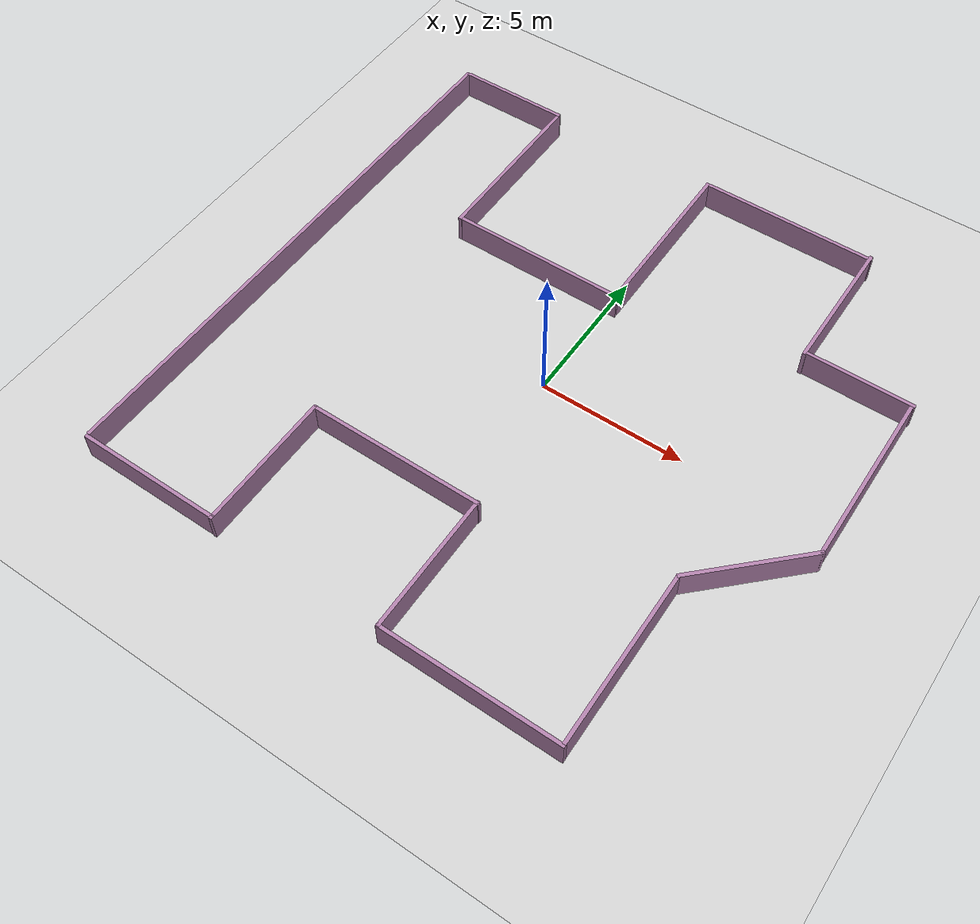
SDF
<sdf version="1.7">
 <world name="default">
  <light name="sun" type="directional">
   <pose>0 0 10 0 -0 0</pose>
   <diffuse>0.8 0.8 0.8 1</diffuse>
   <specular>0.2 0.2 0.2 1</specular>
   <attenuation>
    <range>1000</range>
    <constant>0.9</constant>
    <linear>0.01</linear>
    <quadratic>0.001</quadratic>
   </attenuation>
   <direction>-0.5 0.1 -0.9</direction>
   <spot><inner_angle>0</inner_angle><outer_angle>0</outer_angle><falloff>0</falloff></spot>
  </light>
  <model name="ground_plane">
   <static>1</static>
   <link name="link">
    <collision name="collision">
     <geometry><plane><normal>0 0 1</normal><size>100 100</size></plane></geometry>
     <surface>
      <contact><collide_bitmask>65535</collide_bitmask></contact>
      <friction><ode><mu>100</mu><mu2>50</mu2></ode></friction>
     </surface>
    </collision>
    <visual name="visual">
     <cast_shadows>0</cast_shadows>
     <geometry><plane><normal>0 0 1</normal><size>100 100</size></plane></geometry>
     <material>
      <script><uri>file://media/materials/scripts/gazebo.material</uri><name>Gazebo/Grey</name></script>
     </material>
    </visual>
   </link>
  </model>
  <gravity>0 0 -9.8</gravity>
  <magnetic_field>6e-06 2.3e-05 -4.2e-05</magnetic_field>
  <atmosphere type="adiabatic"/>
  <physics type="ode">
   <max_step_size>0.001</max_step_size>
   <real_time_factor>1</real_time_factor>
   <real_time_update_rate>1000</real_time_update_rate>
  </physics>
  <scene><ambient>0.4 0.4 0.4 1</ambient><background>0.7 0.7 0.7 1</background><shadows>1</shadows></scene>
  <spherical_coordinates>
   <surface_model>EARTH_WGS84</surface_model>
   <latitude_deg>0</latitude_deg>
   <longitude_deg>0</longitude_deg>
   <elevation>0</elevation>
   <heading_deg>0</heading_deg>
  </spherical_coordinates>
  <model name="walls2">
   <link name="link_0">
    <inertial>
     <mass>50</mass>
     <inertia><ixx>4.23073</ixx><ixy>0</ixy><ixz>0</ixz><iyy>159.789</iyy><iyz>0</iyz><izz>155.687</izz></inertia>
    </inertial>
    <pose>2.81569 9.66174 -0 0 -0 0</pose>
    <visual name="visual">
     <geometry><box><size>6.11142 0.123995 1</size></box></geometry>
     <material>
      <lighting>1</lighting>
      <script><uri>file://media/materials/scripts/gazebo.material</uri><name>Gazebo/Grey</name></script>
      <shader type="pixel"><normal_map>__default__</normal_map></shader>
      <ambient>0.678 0.498 0.659 1</ambient>
      <diffuse>0.7 0.7 0.7 1</diffuse>
      <specular>0.01 0.01 0.01 1</specular>
      <emissive>0 0 0 1</emissive>
     </material>
    </visual>
    <collision name="collision">
     <geometry><box><size>6.11142 0.123995 1</size></box></geometry>
     <surface>
      <friction>
       <ode><mu>1</mu><mu2>1</mu2><fdir1>0 0 0</fdir1><slip1>0</slip1><slip2>0</slip2></ode>
       <torsional>
        <coefficient>1</coefficient>
        <patch_radius>0</patch_radius>
        <surface_radius>0</surface_radius>
        <use_patch_radius>1</use_patch_radius>
        <ode><slip>0</slip></ode>
       </torsional>
      </friction>
      <bounce><restitution_coefficient>0</restitution_coefficient><threshold>1e+06</threshold></bounce>
      <contact>
       <collide_without_contact>0</collide_without_contact>
       <collide_without_contact_bitmask>1</collide_without_contact_bitmask>
       <collide_bitmask>1</collide_bitmask>
       <ode>
        <soft_cfm>0</soft_cfm>
        <soft_erp>0.2</soft_erp>
        <kp>1e+13</kp>
        <kd>1</kd>
        <max_vel>0.01</max_vel>
        <min_depth>0</min_depth>
       </ode>
       <bullet>
        <split_impulse>1</split_impulse>
        <split_impulse_penetration_threshold>-0.01</split_impulse_penetration_threshold>
        <soft_cfm>0</soft_cfm>
        <soft_erp>0.2</soft_erp>
        <kp>1e+13</kp>
        <kd>1</kd>
       </bullet>
      </contact>
     </surface>
    </collision>
   </link>
   <link name="link_0_clone">
    <inertial>
     <mass>50</mass>
     <inertia><ixx>4.23073</ixx><ixy>0</ixy><ixz>0</ixz><iyy>159.789</iyy><iyz>0</iyz><izz>155.687</izz></inertia>
    </inertial>
    <pose>-3.2525 3.58824 -0 0 -0 0</pose>
    <visual name="visual">
     <geometry><box><size>6.11142 0.123995 1</size></box></geometry>
     <material>
      <lighting>1</lighting>
      <script><uri>file://media/materials/scripts/gazebo.material</uri><name>Gazebo/Grey</name></script>
      <shader type="pixel"><normal_map>__default__</normal_map></shader>
      <ambient>0.678 0.498 0.659 1</ambient>
      <diffuse>0.7 0.7 0.7 1</diffuse>
      <specular>0.01 0.01 0.01 1</specular>
      <emissive>0 0 0 1</emissive>
     </material>
    </visual>
    <collision name="collision">
     <geometry><box><size>6.11142 0.123995 1</size></box></geometry>
     <surface>
      <friction>
       <ode><mu>1</mu><mu2>1</mu2><fdir1>0 0 0</fdir1><slip1>0</slip1><slip2>0</slip2></ode>
       <torsional>
        <coefficient>1</coefficient>
        <patch_radius>0</patch_radius>
        <surface_radius>0</surface_radius>
        <use_patch_radius>1</use_patch_radius>
        <ode><slip>0</slip></ode>
       </torsional>
      </friction>
      <bounce><restitution_coefficient>0</restitution_coefficient><threshold>1e+06</threshold></bounce>
      <contact>
       <collide_without_contact>0</collide_without_contact>
       <collide_without_contact_bitmask>1</collide_without_contact_bitmask>
       <collide_bitmask>1</collide_bitmask>
       <ode>
        <soft_cfm>0</soft_cfm>
        <soft_erp>0.2</soft_erp>
        <kp>1e+13</kp>
        <kd>1</kd>
        <max_vel>0.01</max_vel>
        <min_depth>0</min_depth>
       </ode>
       <bullet>
        <split_impulse>1</split_impulse>
        <split_impulse_penetration_threshold>-0.01</split_impulse_penetration_threshold>
        <soft_cfm>0</soft_cfm>
        <soft_erp>0.2</soft_erp>
        <kp>1e+13</kp>
        <kd>1</kd>
       </bullet>
      </contact>
     </surface>
    </collision>
   </link>
   <link name="link_0_clone_0">
    <inertial>
     <mass>50</mass>
     <inertia><ixx>4.23073</ixx><ixy>0</ixy><ixz>0</ixz><iyy>159.789</iyy><iyz>0</iyz><izz>155.687</izz></inertia>
    </inertial>
    <pose>-0.275729 6.66057 0 0 -0 1.57761</pose>
    <visual name="visual">
     <geometry><box><size>6.11142 0.123995 1</size></box></geometry>
     <material>
      <lighting>1</lighting>
      <script><uri>file://media/materials/scripts/gazebo.material</uri><name>Gazebo/Grey</name></script>
      <shader type="pixel"><normal_map>__default__</normal_map></shader>
      <ambient>0.678 0.498 0.659 1</ambient>
      <diffuse>0.7 0.7 0.7 1</diffuse>
      <specular>0.01 0.01 0.01 1</specular>
      <emissive>0 0 0 1</emissive>
     </material>
    </visual>
    <collision name="collision">
     <geometry><box><size>6.11142 0.123995 1</size></box></geometry>
     <surface>
      <friction>
       <ode><mu>1</mu><mu2>1</mu2><fdir1>0 0 0</fdir1><slip1>0</slip1><slip2>0</slip2></ode>
       <torsional>
        <coefficient>1</coefficient>
        <patch_radius>0</patch_radius>
        <surface_radius>0</surface_radius>
        <use_patch_radius>1</use_patch_radius>
        <ode><slip>0</slip></ode>
       </torsional>
      </friction>
      <bounce><restitution_coefficient>0</restitution_coefficient><threshold>1e+06</threshold></bounce>
      <contact>
       <collide_without_contact>0</collide_without_contact>
       <collide_without_contact_bitmask>1</collide_without_contact_bitmask>
       <collide_bitmask>1</collide_bitmask>
       <ode>
        <soft_cfm>0</soft_cfm>
        <soft_erp>0.2</soft_erp>
        <kp>1e+13</kp>
        <kd>1</kd>
        <max_vel>0.01</max_vel>
        <min_depth>0</min_depth>
       </ode>
       <bullet>
        <split_impulse>1</split_impulse>
        <split_impulse_penetration_threshold>-0.01</split_impulse_penetration_threshold>
        <soft_cfm>0</soft_cfm>
        <soft_erp>0.2</soft_erp>
        <kp>1e+13</kp>
        <kd>1</kd>
       </bullet>
      </contact>
     </surface>
    </collision>
   </link>
   <link name="link_0_clone_0_clone">
    <inertial>
     <mass>50</mass>
     <inertia><ixx>4.23073</ixx><ixy>0</ixy><ixz>0</ixz><iyy>159.789</iyy><iyz>0</iyz><izz>155.687</izz></inertia>
    </inertial>
    <pose>-6.39642 6.57189 -0 0 -0 1.57761</pose>
    <visual name="visual">
     <geometry><box><size>6.11142 0.123995 1</size></box></geometry>
     <material>
      <lighting>1</lighting>
      <script><uri>file://media/materials/scripts/gazebo.material</uri><name>Gazebo/Grey</name></script>
      <shader type="pixel"><normal_map>__default__</normal_map></shader>
      <ambient>0.678 0.498 0.659 1</ambient>
      <diffuse>0.7 0.7 0.7 1</diffuse>
      <specular>0.01 0.01 0.01 1</specular>
      <emissive>0 0 0 1</emissive>
     </material>
    </visual>
    <collision name="collision">
     <geometry><box><size>6.11142 0.123995 1</size></box></geometry>
     <surface>
      <friction>
       <ode><mu>1</mu><mu2>1</mu2><fdir1>0 0 0</fdir1><slip1>0</slip1><slip2>0</slip2></ode>
       <torsional>
        <coefficient>1</coefficient>
        <patch_radius>0</patch_radius>
        <surface_radius>0</surface_radius>
        <use_patch_radius>1</use_patch_radius>
        <ode><slip>0</slip></ode>
       </torsional>
      </friction>
      <bounce><restitution_coefficient>0</restitution_coefficient><threshold>1e+06</threshold></bounce>
      <contact>
       <collide_without_contact>0</collide_without_contact>
       <collide_without_contact_bitmask>1</collide_without_contact_bitmask>
       <collide_bitmask>1</collide_bitmask>
       <ode>
        <soft_cfm>0</soft_cfm>
        <soft_erp>0.2</soft_erp>
        <kp>1e+13</kp>
        <kd>1</kd>
        <max_vel>0.01</max_vel>
        <min_depth>0</min_depth>
       </ode>
       <bullet>
        <split_impulse>1</split_impulse>
        <split_impulse_penetration_threshold>-0.01</split_impulse_penetration_threshold>
        <soft_cfm>0</soft_cfm>
        <soft_erp>0.2</soft_erp>
        <kp>1e+13</kp>
        <kd>1</kd>
       </bullet>
      </contact>
     </surface>
    </collision>
   </link>
   <link name="link_0_clone_0_clone_0">
    <inertial>
     <mass>50</mass>
     <inertia><ixx>4.23073</ixx><ixy>0</ixy><ixz>0</ixz><iyy>104.411</iyy><iyz>0</iyz><izz>100.308</izz></inertia>
    </inertial>
    <pose>5.79942 7.34796 0 0 -0 1.57761</pose>
    <visual name="visual">
     <geometry><box><size>4.90496 0.123995 1</size></box></geometry>
     <material>
      <lighting>1</lighting>
      <script><uri>file://media/materials/scripts/gazebo.material</uri><name>Gazebo/Grey</name></script>
      <shader type="pixel"><normal_map>__default__</normal_map></shader>
      <ambient>0.678 0.498 0.659 1</ambient>
      <diffuse>0.7 0.7 0.7 1</diffuse>
      <specular>0.01 0.01 0.01 1</specular>
      <emissive>0 0 0 1</emissive>
     </material>
    </visual>
    <collision name="collision">
     <geometry><box><size>4.90496 0.123995 1</size></box></geometry>
     <surface>
      <friction>
       <ode><mu>1</mu><mu2>1</mu2><fdir1>0 0 0</fdir1><slip1>0</slip1><slip2>0</slip2></ode>
       <torsional>
        <coefficient>1</coefficient>
        <patch_radius>0</patch_radius>
        <surface_radius>0</surface_radius>
        <use_patch_radius>1</use_patch_radius>
        <ode><slip>0</slip></ode>
       </torsional>
      </friction>
      <bounce><restitution_coefficient>0</restitution_coefficient><threshold>1e+06</threshold></bounce>
      <contact>
       <collide_without_contact>0</collide_without_contact>
       <collide_without_contact_bitmask>1</collide_without_contact_bitmask>
       <collide_bitmask>1</collide_bitmask>
       <ode>
        <soft_cfm>0</soft_cfm>
        <soft_erp>0.2</soft_erp>
        <kp>1e+13</kp>
        <kd>1</kd>
        <max_vel>0.01</max_vel>
        <min_depth>0</min_depth>
       </ode>
       <bullet>
        <split_impulse>1</split_impulse>
        <split_impulse_penetration_threshold>-0.01</split_impulse_penetration_threshold>
        <soft_cfm>0</soft_cfm>
        <soft_erp>0.2</soft_erp>
        <kp>1e+13</kp>
        <kd>1</kd>
       </bullet>
      </contact>
     </surface>
    </collision>
   </link>
   <link name="link_0_clone_0_clone_clone">
    <inertial>
     <mass>50</mass>
     <inertia><ixx>4.23073</ixx><ixy>0</ixy><ixz>0</ixz><iyy>1607.24</iyy><iyz>0</iyz><izz>1603.13</izz></inertia>
    </inertial>
    <pose>-10.39 -0.11205 -0 0 -0 1.57046</pose>
    <visual name="visual">
     <geometry><box><size>19.6147 0.123995 1</size></box></geometry>
     <material>
      <lighting>1</lighting>
      <script><uri>file://media/materials/scripts/gazebo.material</uri><name>Gazebo/Grey</name></script>
      <shader type="pixel"><normal_map>__default__</normal_map></shader>
      <ambient>0.678 0.498 0.659 1</ambient>
      <diffuse>0.7 0.7 0.7 1</diffuse>
      <specular>0.01 0.01 0.01 1</specular>
      <emissive>0 0 0 1</emissive>
     </material>
    </visual>
    <collision name="collision">
     <geometry><box><size>19.6147 0.123995 1</size></box></geometry>
     <surface>
      <friction>
       <ode><mu>1</mu><mu2>1</mu2><fdir1>0 0 0</fdir1><slip1>0</slip1><slip2>0</slip2></ode>
       <torsional>
        <coefficient>1</coefficient>
        <patch_radius>0</patch_radius>
        <surface_radius>0</surface_radius>
        <use_patch_radius>1</use_patch_radius>
        <ode><slip>0</slip></ode>
       </torsional>
      </friction>
      <bounce><restitution_coefficient>0</restitution_coefficient><threshold>1e+06</threshold></bounce>
      <contact>
       <collide_without_contact>0</collide_without_contact>
       <collide_without_contact_bitmask>1</collide_without_contact_bitmask>
       <collide_bitmask>1</collide_bitmask>
       <ode>
        <soft_cfm>0</soft_cfm>
        <soft_erp>0.2</soft_erp>
        <kp>1e+13</kp>
        <kd>1</kd>
        <max_vel>0.01</max_vel>
        <min_depth>0</min_depth>
       </ode>
       <bullet>
        <split_impulse>1</split_impulse>
        <split_impulse_penetration_threshold>-0.01</split_impulse_penetration_threshold>
        <soft_cfm>0</soft_cfm>
        <soft_erp>0.2</soft_erp>
        <kp>1e+13</kp>
        <kd>1</kd>
       </bullet>
      </contact>
     </surface>
    </collision>
   </link>
   <link name="link_0_clone_0_clone_clone_1">
    <inertial>
     <mass>50</mass>
     <inertia><ixx>4.23073</ixx><ixy>0</ixy><ixz>0</ixz><iyy>159.789</iyy><iyz>0</iyz><izz>155.687</izz></inertia>
    </inertial>
    <pose>9.45052 1.86327 0 0 -0 1.57761</pose>
    <visual name="visual">
     <geometry><box><size>6.11142 0.123995 1</size></box></geometry>
     <material>
      <lighting>1</lighting>
      <script><uri>file://media/materials/scripts/gazebo.material</uri><name>Gazebo/Grey</name></script>
      <shader type="pixel"><normal_map>__default__</normal_map></shader>
      <ambient>0.678 0.498 0.659 1</ambient>
      <diffuse>0.7 0.7 0.7 1</diffuse>
      <specular>0.01 0.01 0.01 1</specular>
      <emissive>0 0 0 1</emissive>
     </material>
    </visual>
    <collision name="collision">
     <geometry><box><size>6.11142 0.123995 1</size></box></geometry>
     <surface>
      <friction>
       <ode><mu>1</mu><mu2>1</mu2><fdir1>0 0 0</fdir1><slip1>0</slip1><slip2>0</slip2></ode>
       <torsional>
        <coefficient>1</coefficient>
        <patch_radius>0</patch_radius>
        <surface_radius>0</surface_radius>
        <use_patch_radius>1</use_patch_radius>
        <ode><slip>0</slip></ode>
       </torsional>
      </friction>
      <bounce><restitution_coefficient>0</restitution_coefficient><threshold>1e+06</threshold></bounce>
      <contact>
       <collide_without_contact>0</collide_without_contact>
       <collide_without_contact_bitmask>1</collide_without_contact_bitmask>
       <collide_bitmask>1</collide_bitmask>
       <ode>
        <soft_cfm>0</soft_cfm>
        <soft_erp>0.2</soft_erp>
        <kp>1e+13</kp>
        <kd>1</kd>
        <max_vel>0.01</max_vel>
        <min_depth>0</min_depth>
       </ode>
       <bullet>
        <split_impulse>1</split_impulse>
        <split_impulse_penetration_threshold>-0.01</split_impulse_penetration_threshold>
        <soft_cfm>0</soft_cfm>
        <soft_erp>0.2</soft_erp>
        <kp>1e+13</kp>
        <kd>1</kd>
       </bullet>
      </contact>
     </surface>
    </collision>
   </link>
   <link name="link_0_clone_0_clone_clone_1_clone">
    <inertial>
     <mass>50</mass>
     <inertia><ixx>4.23073</ixx><ixy>0</ixy><ixz>0</ixz><iyy>150.274</iyy><iyz>0</iyz><izz>146.172</izz></inertia>
    </inertial>
    <pose>6.54357 -7.01597 0 0 -0 1.57761</pose>
    <visual name="visual">
     <geometry><box><size>5.92164 0.123995 1</size></box></geometry>
     <material>
      <lighting>1</lighting>
      <script><uri>file://media/materials/scripts/gazebo.material</uri><name>Gazebo/Grey</name></script>
      <shader type="pixel"><normal_map>__default__</normal_map></shader>
      <ambient>0.678 0.498 0.659 1</ambient>
      <diffuse>0.7 0.7 0.7 1</diffuse>
      <specular>0.01 0.01 0.01 1</specular>
      <emissive>0 0 0 1</emissive>
     </material>
    </visual>
    <collision name="collision">
     <geometry><box><size>5.92164 0.123995 1</size></box></geometry>
     <surface>
      <friction>
       <ode><mu>1</mu><mu2>1</mu2><fdir1>0 0 0</fdir1><slip1>0</slip1><slip2>0</slip2></ode>
       <torsional>
        <coefficient>1</coefficient>
        <patch_radius>0</patch_radius>
        <surface_radius>0</surface_radius>
        <use_patch_radius>1</use_patch_radius>
        <ode><slip>0</slip></ode>
       </torsional>
      </friction>
      <bounce><restitution_coefficient>0</restitution_coefficient><threshold>1e+06</threshold></bounce>
      <contact>
       <collide_without_contact>0</collide_without_contact>
       <collide_without_contact_bitmask>1</collide_without_contact_bitmask>
       <collide_bitmask>1</collide_bitmask>
       <ode>
        <soft_cfm>0</soft_cfm>
        <soft_erp>0.2</soft_erp>
        <kp>1e+13</kp>
        <kd>1</kd>
        <max_vel>0.01</max_vel>
        <min_depth>0</min_depth>
       </ode>
       <bullet>
        <split_impulse>1</split_impulse>
        <split_impulse_penetration_threshold>-0.01</split_impulse_penetration_threshold>
        <soft_cfm>0</soft_cfm>
        <soft_erp>0.2</soft_erp>
        <kp>1e+13</kp>
        <kd>1</kd>
       </bullet>
      </contact>
     </surface>
    </collision>
   </link>
   <link name="link_0_clone_0_clone_clone_1_clone_0">
    <inertial>
     <mass>50</mass>
     <inertia><ixx>4.23073</ixx><ixy>0</ixy><ixz>0</ixz><iyy>80.3782</iyy><iyz>0</iyz><izz>76.2756</izz></inertia>
    </inertial>
    <pose>8.00906 -2.60649 -0 0 -0 0.779476</pose>
    <visual name="visual">
     <geometry><box><size>4.27677 0.123995 1</size></box></geometry>
     <material>
      <lighting>1</lighting>
      <script><uri>file://media/materials/scripts/gazebo.material</uri><name>Gazebo/Grey</name></script>
      <shader type="pixel"><normal_map>__default__</normal_map></shader>
      <ambient>0.678 0.498 0.659 1</ambient>
      <diffuse>0.7 0.7 0.7 1</diffuse>
      <specular>0.01 0.01 0.01 1</specular>
      <emissive>0 0 0 1</emissive>
     </material>
    </visual>
    <collision name="collision">
     <geometry><box><size>4.27677 0.123995 1</size></box></geometry>
     <surface>
      <friction>
       <ode><mu>1</mu><mu2>1</mu2><fdir1>0 0 0</fdir1><slip1>0</slip1><slip2>0</slip2></ode>
       <torsional>
        <coefficient>1</coefficient>
        <patch_radius>0</patch_radius>
        <surface_radius>0</surface_radius>
        <use_patch_radius>1</use_patch_radius>
        <ode><slip>0</slip></ode>
       </torsional>
      </friction>
      <bounce><restitution_coefficient>0</restitution_coefficient><threshold>1e+06</threshold></bounce>
      <contact>
       <collide_without_contact>0</collide_without_contact>
       <collide_without_contact_bitmask>1</collide_without_contact_bitmask>
       <collide_bitmask>1</collide_bitmask>
       <ode>
        <soft_cfm>0</soft_cfm>
        <soft_erp>0.2</soft_erp>
        <kp>1e+13</kp>
        <kd>1</kd>
        <max_vel>0.01</max_vel>
        <min_depth>0</min_depth>
       </ode>
       <bullet>
        <split_impulse>1</split_impulse>
        <split_impulse_penetration_threshold>-0.01</split_impulse_penetration_threshold>
        <soft_cfm>0</soft_cfm>
        <soft_erp>0.2</soft_erp>
        <kp>1e+13</kp>
        <kd>1</kd>
       </bullet>
      </contact>
     </surface>
    </collision>
   </link>
   <link name="link_0_clone_0_clone_clone_1_clone_1">
    <inertial>
     <mass>50</mass>
     <inertia><ixx>4.23073</ixx><ixy>0</ixy><ixz>0</ixz><iyy>100.443</iyy><iyz>0</iyz><izz>96.3407</izz></inertia>
    </inertial>
    <pose>0.563417 -7.63733 -0 0 -0 1.57761</pose>
    <visual name="visual">
     <geometry><box><size>4.80691 0.123995 1</size></box></geometry>
     <material>
      <lighting>1</lighting>
      <script><uri>file://media/materials/scripts/gazebo.material</uri><name>Gazebo/Grey</name></script>
      <shader type="pixel"><normal_map>__default__</normal_map></shader>
      <ambient>0.678 0.498 0.659 1</ambient>
      <diffuse>0.7 0.7 0.7 1</diffuse>
      <specular>0.01 0.01 0.01 1</specular>
      <emissive>0 0 0 1</emissive>
     </material>
    </visual>
    <collision name="collision">
     <geometry><box><size>4.80691 0.123995 1</size></box></geometry>
     <surface>
      <friction>
       <ode><mu>1</mu><mu2>1</mu2><fdir1>0 0 0</fdir1><slip1>0</slip1><slip2>0</slip2></ode>
       <torsional>
        <coefficient>1</coefficient>
        <patch_radius>0</patch_radius>
        <surface_radius>0</surface_radius>
        <use_patch_radius>1</use_patch_radius>
        <ode><slip>0</slip></ode>
       </torsional>
      </friction>
      <bounce><restitution_coefficient>0</restitution_coefficient><threshold>1e+06</threshold></bounce>
      <contact>
       <collide_without_contact>0</collide_without_contact>
       <collide_without_contact_bitmask>1</collide_without_contact_bitmask>
       <collide_bitmask>1</collide_bitmask>
       <ode>
        <soft_cfm>0</soft_cfm>
        <soft_erp>0.2</soft_erp>
        <kp>1e+13</kp>
        <kd>1</kd>
        <max_vel>0.01</max_vel>
        <min_depth>0</min_depth>
       </ode>
       <bullet>
        <split_impulse>1</split_impulse>
        <split_impulse_penetration_threshold>-0.01</split_impulse_penetration_threshold>
        <soft_cfm>0</soft_cfm>
        <soft_erp>0.2</soft_erp>
        <kp>1e+13</kp>
        <kd>1</kd>
       </bullet>
      </contact>
     </surface>
    </collision>
   </link>
   <link name="link_0_clone_0_clone_clone_1_clone_1_clone">
    <inertial>
     <mass>50</mass>
     <inertia><ixx>4.23073</ixx><ixy>0</ixy><ixz>0</ixz><iyy>100.443</iyy><iyz>0</iyz><izz>96.3407</izz></inertia>
    </inertial>
    <pose>-5.43915 -7.66802 -0 0 -0 1.57761</pose>
    <visual name="visual">
     <geometry><box><size>4.80691 0.123995 1</size></box></geometry>
     <material>
      <lighting>1</lighting>
      <script><uri>file://media/materials/scripts/gazebo.material</uri><name>Gazebo/Grey</name></script>
      <shader type="pixel"><normal_map>__default__</normal_map></shader>
      <ambient>0.678 0.498 0.659 1</ambient>
      <diffuse>0.7 0.7 0.7 1</diffuse>
      <specular>0.01 0.01 0.01 1</specular>
      <emissive>0 0 0 1</emissive>
     </material>
    </visual>
    <collision name="collision">
     <geometry><box><size>4.80691 0.123995 1</size></box></geometry>
     <surface>
      <friction>
       <ode><mu>1</mu><mu2>1</mu2><fdir1>0 0 0</fdir1><slip1>0</slip1><slip2>0</slip2></ode>
       <torsional>
        <coefficient>1</coefficient>
        <patch_radius>0</patch_radius>
        <surface_radius>0</surface_radius>
        <use_patch_radius>1</use_patch_radius>
        <ode><slip>0</slip></ode>
       </torsional>
      </friction>
      <bounce><restitution_coefficient>0</restitution_coefficient><threshold>1e+06</threshold></bounce>
      <contact>
       <collide_without_contact>0</collide_without_contact>
       <collide_without_contact_bitmask>1</collide_without_contact_bitmask>
       <collide_bitmask>1</collide_bitmask>
       <ode>
        <soft_cfm>0</soft_cfm>
        <soft_erp>0.2</soft_erp>
        <kp>1e+13</kp>
        <kd>1</kd>
        <max_vel>0.01</max_vel>
        <min_depth>0</min_depth>
       </ode>
       <bullet>
        <split_impulse>1</split_impulse>
        <split_impulse_penetration_threshold>-0.01</split_impulse_penetration_threshold>
        <soft_cfm>0</soft_cfm>
        <soft_erp>0.2</soft_erp>
        <kp>1e+13</kp>
        <kd>1</kd>
       </bullet>
      </contact>
     </surface>
    </collision>
   </link>
   <link name="link_0_clone_1">
    <inertial>
     <mass>50</mass>
     <inertia><ixx>4.23073</ixx><ixy>0</ixy><ixz>0</ixz><iyy>159.789</iyy><iyz>0</iyz><izz>155.687</izz></inertia>
    </inertial>
    <pose>3.57469 -10.0036 -0 0 -0 0</pose>
    <visual name="visual">
     <geometry><box><size>6.11142 0.123995 1</size></box></geometry>
     <material>
      <lighting>1</lighting>
      <script><uri>file://media/materials/scripts/gazebo.material</uri><name>Gazebo/Grey</name></script>
      <shader type="pixel"><normal_map>__default__</normal_map></shader>
      <ambient>0.678 0.498 0.659 1</ambient>
      <diffuse>0.7 0.7 0.7 1</diffuse>
      <specular>0.01 0.01 0.01 1</specular>
      <emissive>0 0 0 1</emissive>
     </material>
    </visual>
    <collision name="collision">
     <geometry><box><size>6.11142 0.123995 1</size></box></geometry>
     <surface>
      <friction>
       <ode><mu>1</mu><mu2>1</mu2><fdir1>0 0 0</fdir1><slip1>0</slip1><slip2>0</slip2></ode>
       <torsional>
        <coefficient>1</coefficient>
        <patch_radius>0</patch_radius>
        <surface_radius>0</surface_radius>
        <use_patch_radius>1</use_patch_radius>
        <ode><slip>0</slip></ode>
       </torsional>
      </friction>
      <bounce><restitution_coefficient>0</restitution_coefficient><threshold>1e+06</threshold></bounce>
      <contact>
       <collide_without_contact>0</collide_without_contact>
       <collide_without_contact_bitmask>1</collide_without_contact_bitmask>
       <collide_bitmask>1</collide_bitmask>
       <ode>
        <soft_cfm>0</soft_cfm>
        <soft_erp>0.2</soft_erp>
        <kp>1e+13</kp>
        <kd>1</kd>
        <max_vel>0.01</max_vel>
        <min_depth>0</min_depth>
       </ode>
       <bullet>
        <split_impulse>1</split_impulse>
        <split_impulse_penetration_threshold>-0.01</split_impulse_penetration_threshold>
        <soft_cfm>0</soft_cfm>
        <soft_erp>0.2</soft_erp>
        <kp>1e+13</kp>
        <kd>1</kd>
       </bullet>
      </contact>
     </surface>
    </collision>
   </link>
   <link name="link_0_clone_1_clone_0">
    <inertial>
     <mass>50</mass>
     <inertia><ixx>4.23073</ixx><ixy>0</ixy><ixz>0</ixz><iyy>159.789</iyy><iyz>0</iyz><izz>155.687</izz></inertia>
    </inertial>
    <pose>-2.41773 -5.3094 -0 0 -0 0</pose>
    <visual name="visual">
     <geometry><box><size>6.11142 0.123995 1</size></box></geometry>
     <material>
      <lighting>1</lighting>
      <script><uri>file://media/materials/scripts/gazebo.material</uri><name>Gazebo/Grey</name></script>
      <shader type="pixel"><normal_map>__default__</normal_map></shader>
      <ambient>0.678 0.498 0.659 1</ambient>
      <diffuse>0.7 0.7 0.7 1</diffuse>
      <specular>0.01 0.01 0.01 1</specular>
      <emissive>0 0 0 1</emissive>
     </material>
    </visual>
    <collision name="collision">
     <geometry><box><size>6.11142 0.123995 1</size></box></geometry>
     <surface>
      <friction>
       <ode><mu>1</mu><mu2>1</mu2><fdir1>0 0 0</fdir1><slip1>0</slip1><slip2>0</slip2></ode>
       <torsional>
        <coefficient>1</coefficient>
        <patch_radius>0</patch_radius>
        <surface_radius>0</surface_radius>
        <use_patch_radius>1</use_patch_radius>
        <ode><slip>0</slip></ode>
       </torsional>
      </friction>
      <bounce><restitution_coefficient>0</restitution_coefficient><threshold>1e+06</threshold></bounce>
      <contact>
       <collide_without_contact>0</collide_without_contact>
       <collide_without_contact_bitmask>1</collide_without_contact_bitmask>
       <collide_bitmask>1</collide_bitmask>
       <ode>
        <soft_cfm>0</soft_cfm>
        <soft_erp>0.2</soft_erp>
        <kp>1e+13</kp>
        <kd>1</kd>
        <max_vel>0.01</max_vel>
        <min_depth>0</min_depth>
       </ode>
       <bullet>
        <split_impulse>1</split_impulse>
        <split_impulse_penetration_threshold>-0.01</split_impulse_penetration_threshold>
        <soft_cfm>0</soft_cfm>
        <soft_erp>0.2</soft_erp>
        <kp>1e+13</kp>
        <kd>1</kd>
       </bullet>
      </contact>
     </surface>
    </collision>
   </link>
   <link name="link_0_clone_1_clone_0_clone">
    <inertial>
     <mass>50</mass>
     <inertia><ixx>4.23073</ixx><ixy>0</ixy><ixz>0</ixz><iyy>110.409</iyy><iyz>0</iyz><izz>106.306</izz></inertia>
    </inertial>
    <pose>-7.9003 -9.9892 -0 0 -0 0</pose>
    <visual name="visual">
     <geometry><box><size>5.04956 0.123995 1</size></box></geometry>
     <material>
      <lighting>1</lighting>
      <script><uri>file://media/materials/scripts/gazebo.material</uri><name>Gazebo/Grey</name></script>
      <shader type="pixel"><normal_map>__default__</normal_map></shader>
      <ambient>0.678 0.498 0.659 1</ambient>
      <diffuse>0.7 0.7 0.7 1</diffuse>
      <specular>0.01 0.01 0.01 1</specular>
      <emissive>0 0 0 1</emissive>
     </material>
    </visual>
    <collision name="collision">
     <geometry><box><size>5.04956 0.123995 1</size></box></geometry>
     <surface>
      <friction>
       <ode><mu>1</mu><mu2>1</mu2><fdir1>0 0 0</fdir1><slip1>0</slip1><slip2>0</slip2></ode>
       <torsional>
        <coefficient>1</coefficient>
        <patch_radius>0</patch_radius>
        <surface_radius>0</surface_radius>
        <use_patch_radius>1</use_patch_radius>
        <ode><slip>0</slip></ode>
       </torsional>
      </friction>
      <bounce><restitution_coefficient>0</restitution_coefficient><threshold>1e+06</threshold></bounce>
      <contact>
       <collide_without_contact>0</collide_without_contact>
       <collide_without_contact_bitmask>1</collide_without_contact_bitmask>
       <collide_bitmask>1</collide_bitmask>
       <ode>
        <soft_cfm>0</soft_cfm>
        <soft_erp>0.2</soft_erp>
        <kp>1e+13</kp>
        <kd>1</kd>
        <max_vel>0.01</max_vel>
        <min_depth>0</min_depth>
       </ode>
       <bullet>
        <split_impulse>1</split_impulse>
        <split_impulse_penetration_threshold>-0.01</split_impulse_penetration_threshold>
        <soft_cfm>0</soft_cfm>
        <soft_erp>0.2</soft_erp>
        <kp>1e+13</kp>
        <kd>1</kd>
       </bullet>
      </contact>
     </surface>
    </collision>
   </link>
   <link name="link_0_clone_1_clone_0_clone_0">
    <inertial>
     <mass>50</mass>
     <inertia><ixx>4.23073</ixx><ixy>0</ixy><ixz>0</ixz><iyy>60.3807</iyy><iyz>0</iyz><izz>56.2781</izz></inertia>
    </inertial>
    <pose>7.6913 4.98883 0 0 -0 0</pose>
    <visual name="visual">
     <geometry><box><size>3.67306 0.123995 1</size></box></geometry>
     <material>
      <lighting>1</lighting>
      <script><uri>file://media/materials/scripts/gazebo.material</uri><name>Gazebo/Grey</name></script>
      <shader type="pixel"><normal_map>__default__</normal_map></shader>
      <ambient>0.678 0.498 0.659 1</ambient>
      <diffuse>0.7 0.7 0.7 1</diffuse>
      <specular>0.01 0.01 0.01 1</specular>
      <emissive>0 0 0 1</emissive>
     </material>
    </visual>
    <collision name="collision">
     <geometry><box><size>3.67306 0.123995 1</size></box></geometry>
     <surface>
      <friction>
       <ode><mu>1</mu><mu2>1</mu2><fdir1>0 0 0</fdir1><slip1>0</slip1><slip2>0</slip2></ode>
       <torsional>
        <coefficient>1</coefficient>
        <patch_radius>0</patch_radius>
        <surface_radius>0</surface_radius>
        <use_patch_radius>1</use_patch_radius>
        <ode><slip>0</slip></ode>
       </torsional>
      </friction>
      <bounce><restitution_coefficient>0</restitution_coefficient><threshold>1e+06</threshold></bounce>
      <contact>
       <collide_without_contact>0</collide_without_contact>
       <collide_without_contact_bitmask>1</collide_without_contact_bitmask>
       <collide_bitmask>1</collide_bitmask>
       <ode>
        <soft_cfm>0</soft_cfm>
        <soft_erp>0.2</soft_erp>
        <kp>1e+13</kp>
        <kd>1</kd>
        <max_vel>0.01</max_vel>
        <min_depth>0</min_depth>
       </ode>
       <bullet>
        <split_impulse>1</split_impulse>
        <split_impulse_penetration_threshold>-0.01</split_impulse_penetration_threshold>
        <soft_cfm>0</soft_cfm>
        <soft_erp>0.2</soft_erp>
        <kp>1e+13</kp>
        <kd>1</kd>
       </bullet>
      </contact>
     </surface>
    </collision>
   </link>
   <link name="link_0_clone_clone">
    <inertial>
     <mass>50</mass>
     <inertia><ixx>4.23073</ixx><ixy>0</ixy><ixz>0</ixz><iyy>70.544</iyy><iyz>0</iyz><izz>66.4414</izz></inertia>
    </inertial>
    <pose>-8.37584 9.65953 -0 0 -0 0</pose>
    <visual name="visual">
     <geometry><box><size>3.99131 0.123995 1</size></box></geometry>
     <material>
      <lighting>1</lighting>
      <script><uri>file://media/materials/scripts/gazebo.material</uri><name>Gazebo/Grey</name></script>
      <shader type="pixel"><normal_map>__default__</normal_map></shader>
      <ambient>0.678 0.498 0.659 1</ambient>
      <diffuse>0.7 0.7 0.7 1</diffuse>
      <specular>0.01 0.01 0.01 1</specular>
      <emissive>0 0 0 1</emissive>
     </material>
    </visual>
    <collision name="collision">
     <geometry><box><size>3.99131 0.123995 1</size></box></geometry>
     <surface>
      <friction>
       <ode><mu>1</mu><mu2>1</mu2><fdir1>0 0 0</fdir1><slip1>0</slip1><slip2>0</slip2></ode>
       <torsional>
        <coefficient>1</coefficient>
        <patch_radius>0</patch_radius>
        <surface_radius>0</surface_radius>
        <use_patch_radius>1</use_patch_radius>
        <ode><slip>0</slip></ode>
       </torsional>
      </friction>
      <bounce><restitution_coefficient>0</restitution_coefficient><threshold>1e+06</threshold></bounce>
      <contact>
       <collide_without_contact>0</collide_without_contact>
       <collide_without_contact_bitmask>1</collide_without_contact_bitmask>
       <collide_bitmask>1</collide_bitmask>
       <ode>
        <soft_cfm>0</soft_cfm>
        <soft_erp>0.2</soft_erp>
        <kp>1e+13</kp>
        <kd>1</kd>
        <max_vel>0.01</max_vel>
        <min_depth>0</min_depth>
       </ode>
       <bullet>
        <split_impulse>1</split_impulse>
        <split_impulse_penetration_threshold>-0.01</split_impulse_penetration_threshold>
        <soft_cfm>0</soft_cfm>
        <soft_erp>0.2</soft_erp>
        <kp>1e+13</kp>
        <kd>1</kd>
       </bullet>
      </contact>
     </surface>
    </collision>
   </link>
   <static>0</static>
   <pose>0.574582 0.108226 0.500003 0 4e-06 -0.000183</pose>
  </model>
 </world>
</sdf>
